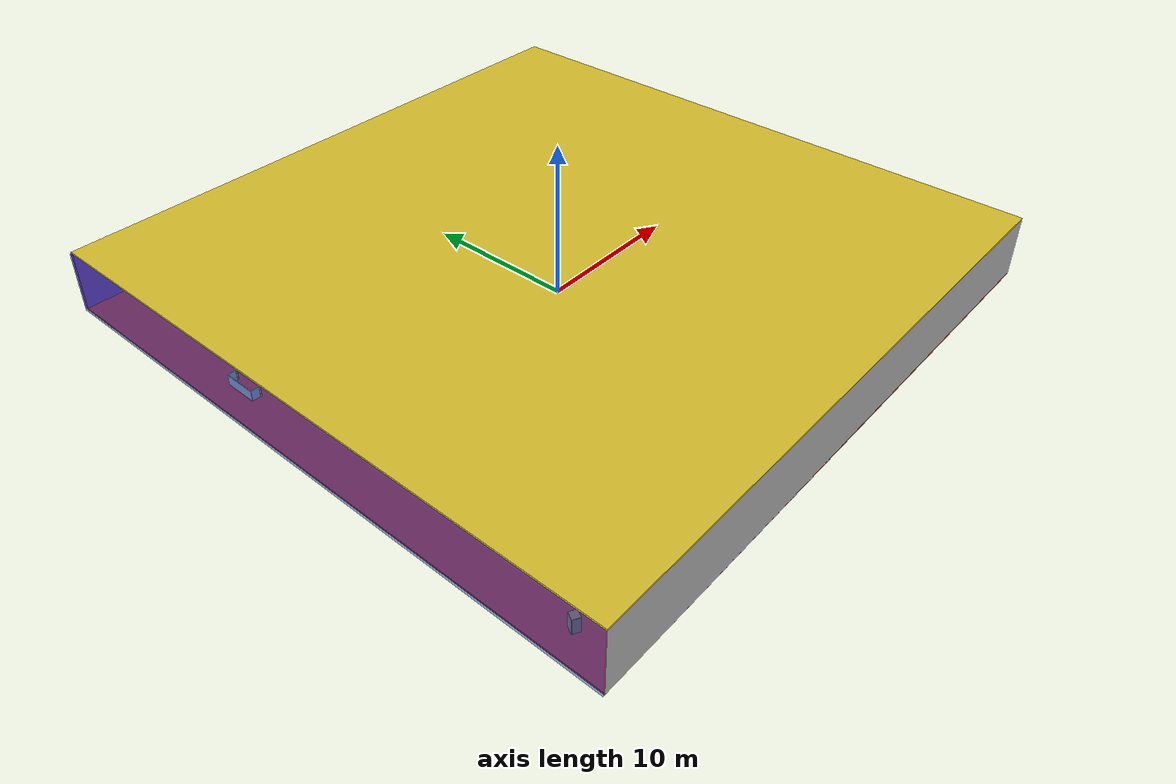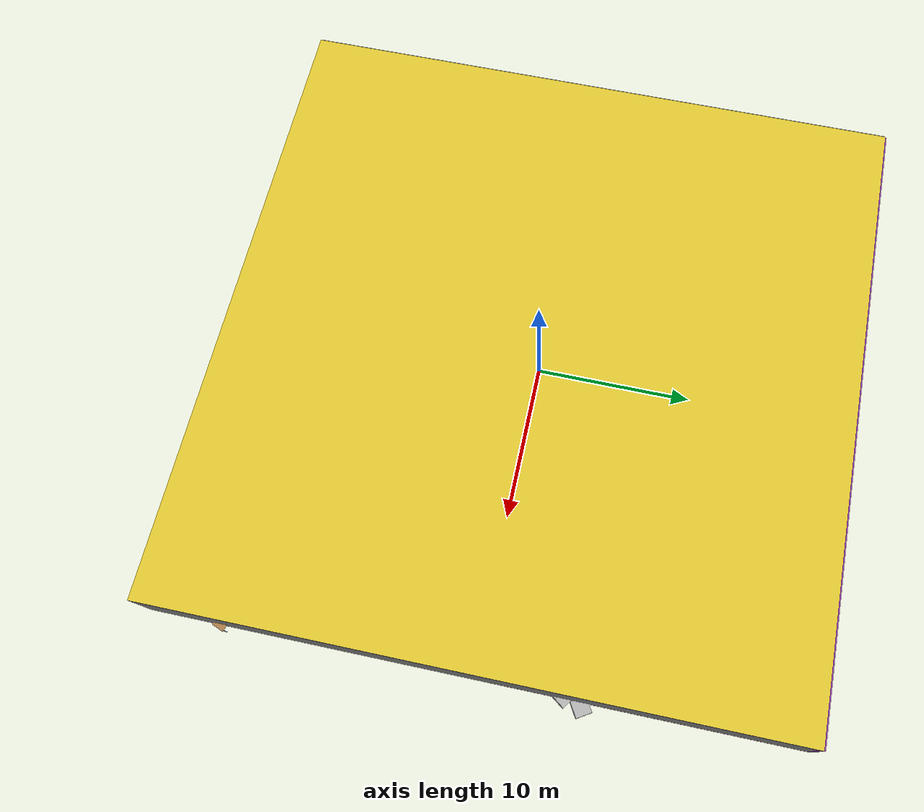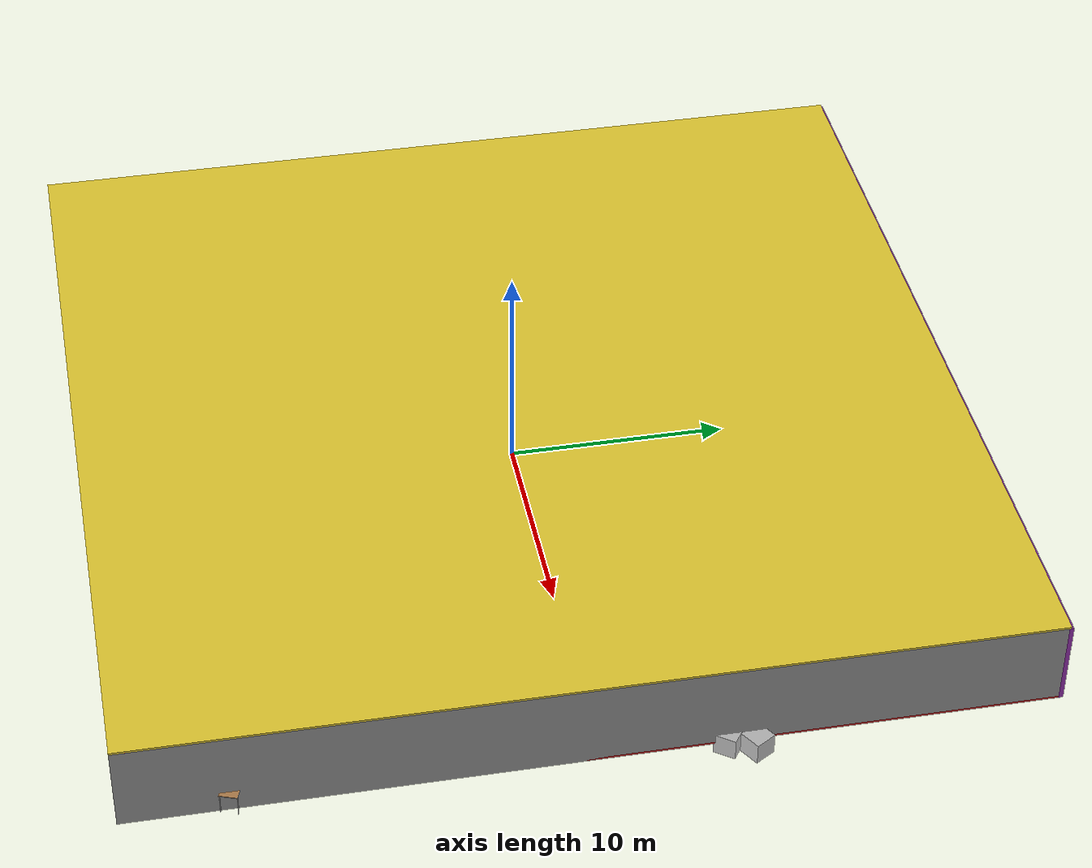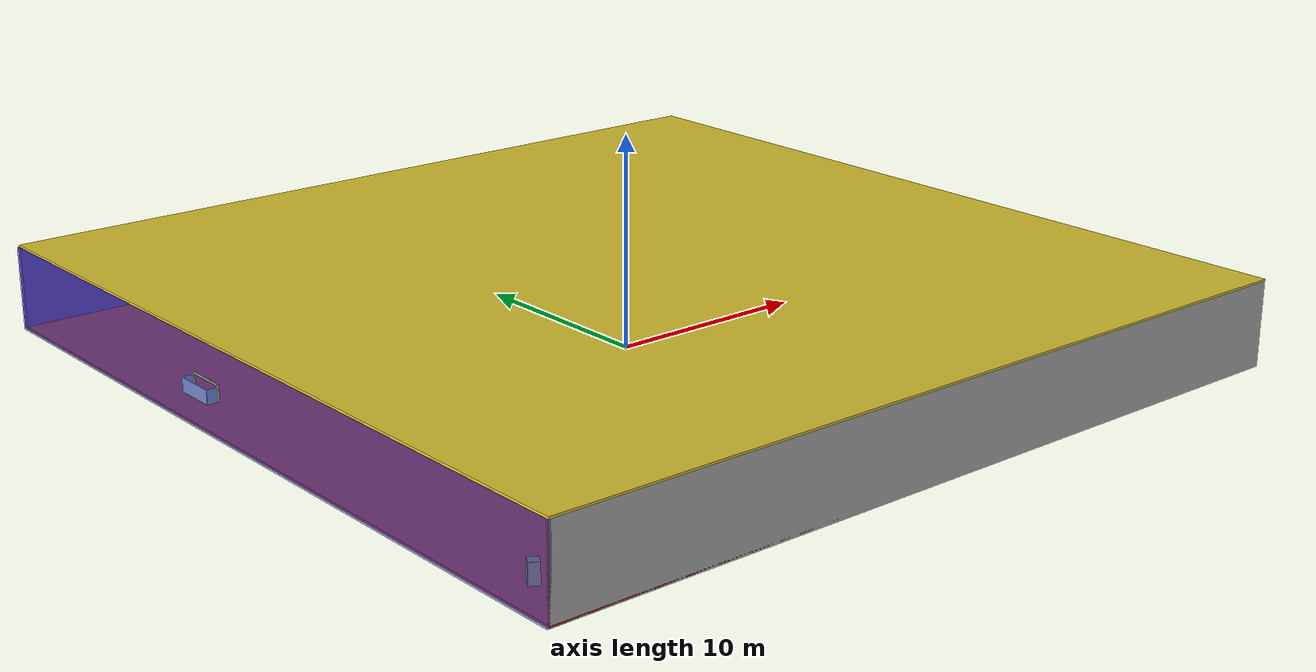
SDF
<sdf version="1.4">
 <world name="default">
  <physics type="ode">
   <max_step_size>0.001</max_step_size>
   <real_time_factor>1</real_time_factor>
   <real_time_update_rate>1000</real_time_update_rate>
   <gravity>0 0 -9.8</gravity>
  </physics>
  <scene><ambient>0.4 0.4 0.4 1</ambient><background>0.7 0.7 0.7 1</background><shadows>1</shadows></scene>
  <model name="Surrounding">
   <static>1</static>
   <link name="Ceiling">
    <collision name="Ceiling_Collision"><geometry><box><size>40 40 0.1</size></box></geometry></collision>
    <visual name="Ceiling_Visual">
     <geometry><box><size>40 40 0.1</size></box></geometry>
     <material>
      <script><uri>file://media/materials/scripts/gazebo.material</uri><name>Gazebo/ZincYellow</name></script>
     </material>
    </visual>
    <pose>0 0 4.05 0 0 0</pose>
   </link>
   <link name="Wall_South">
    <collision name="Wall_South_Collision">
     <geometry><box><size>40 0 4</size></box></geometry>
     <pose>0 0 2 0 -0 0</pose>
    </collision>
    <visual name="Wall_South_Visual">
     <pose>0 0 2 0 -0 0</pose>
     <geometry><box><size>40 0 4</size></box></geometry>
     <material>
      <script><uri>file://media/materials/scripts/gazebo.material</uri><name>Gazebo/CloudySky</name></script>
     </material>
    </visual>
    <velocity_decay><linear>0</linear><angular>0</angular></velocity_decay>
    <pose>0 -20 0 0 -0 0</pose>
   </link>
   <link name="Wall_East">
    <collision name="Wall_21_Collision">
     <geometry><box><size>40 0 4</size></box></geometry>
     <pose>0 0 2 0 -0 0</pose>
    </collision>
    <visual name="Wall_21_Visual">
     <pose>0 0 2 0 -0 0</pose>
     <geometry><box><size>40 0 4</size></box></geometry>
     <material>
      <script><uri>file://media/materials/scripts/gazebo.material</uri><name>Gazebo/GreyGradientSky</name></script>
     </material>
    </visual>
    <velocity_decay><linear>0</linear><angular>0</angular></velocity_decay>
    <pose>20 0 0 0 -0 1.5708</pose>
   </link>
   <link name="Wall_North">
    <collision name="Wall_22_Collision">
     <geometry><box><size>40 0.2 4</size></box></geometry>
     <pose>0 0 2 0 -0 0</pose>
    </collision>
    <visual name="Wall_22_Visual">
     <pose>0 0 2 0 -0 0</pose>
     <geometry><box><size>40 0.2 4</size></box></geometry>
     <material>
      <script><uri>file://media/materials/scripts/gazebo.material</uri><name>Gazebo/Purple</name></script>
     </material>
    </visual>
    <velocity_decay><linear>0</linear><angular>0</angular></velocity_decay>
    <pose>0 20 0 0 -0 0</pose>
   </link>
   <link name="Wall_West">
    <collision name="Wall_23_Collision">
     <geometry><box><size>40 0.2 4</size></box></geometry>
     <pose>0 0 2 0 -0 0</pose>
    </collision>
    <visual name="Wall_23_Visual">
     <pose>0 0 2 0 -0 0</pose>
     <geometry><box><size>40 0.2 4</size></box></geometry>
     <material>
      <script><uri>file://media/materials/scripts/gazebo.material</uri><name>Gazebo/BlueTransparent</name></script>
     </material>
    </visual>
    <velocity_decay><linear>0</linear><angular>0</angular></velocity_decay>
    <pose>-20 0 0 0 0 -1.5708</pose>
   </link>
   <link name="Ground_link">
    <collision name="collision">
     <pose>0 0 .05 0 -0 0</pose>
     <geometry><box><size>40 40 0.1</size></box></geometry>
    </collision>
    <visual name="visual">
     <pose>0 0 .05 0 -0 0</pose>
     <geometry><box><size>40 40 0.1</size></box></geometry>
     <material>
      <script><uri>file://media/materials/scripts/gazebo.material</uri><name>Gazebo/Red</name></script>
     </material>
    </visual>
   </link>
   <static>1</static>
  </model>
  <spherical_coordinates>
   <surface_model>EARTH_WGS84</surface_model>
   <latitude_deg>0</latitude_deg>
   <longitude_deg>0</longitude_deg>
   <elevation>0</elevation>
   <heading_deg>0</heading_deg>
  </spherical_coordinates>
  <light name="lightball_0" type="diffuse">
   <diffuse>0.8 0.8 0.8 1</diffuse>
   <specular>0.2 0.2 0.2 1</specular>
   <attenuation>
    <range>100</range>
    <constant>0.7</constant>
    <linear>0.01</linear>
    <quadratic>0.001</quadratic>
   </attenuation>
   <direction>-0.5 0.1 -0.9</direction>
   <pose>9.78140678765 -5.48198401742 3.31244397632 0 0 0</pose>
  </light>
  <light name="lightball_1" type="diffuse">
   <diffuse>0.8 0.8 0.8 1</diffuse>
   <specular>0.2 0.2 0.2 1</specular>
   <attenuation>
    <range>100</range>
    <constant>0.7</constant>
    <linear>0.01</linear>
    <quadratic>0.001</quadratic>
   </attenuation>
   <direction>-0.5 0.1 -0.9</direction>
   <pose>0.000283256969457 -0.236172714292 2.79142707209 0 0 0</pose>
  </light>
  <light name="lightball_2" type="diffuse">
   <diffuse>0.8 0.8 0.8 1</diffuse>
   <specular>0.2 0.2 0.2 1</specular>
   <attenuation>
    <range>100</range>
    <constant>0.7</constant>
    <linear>0.01</linear>
    <quadratic>0.001</quadratic>
   </attenuation>
   <direction>-0.5 0.1 -0.9</direction>
   <pose>-0.546352244292 3.40164266964 1.42496108457 0 0 0</pose>
  </light>
  <light name="lightball_3" type="diffuse">
   <diffuse>0.8 0.8 0.8 1</diffuse>
   <specular>0.2 0.2 0.2 1</specular>
   <attenuation>
    <range>100</range>
    <constant>0.7</constant>
    <linear>0.01</linear>
    <quadratic>0.001</quadratic>
   </attenuation>
   <direction>-0.5 0.1 -0.9</direction>
   <pose>-6.22101800927 -14.6950618875 1.97176133039 0 0 0</pose>
  </light>
  <light name="lightball_4" type="diffuse">
   <diffuse>0.8 0.8 0.8 1</diffuse>
   <specular>0.2 0.2 0.2 1</specular>
   <attenuation>
    <range>100</range>
    <constant>0.7</constant>
    <linear>0.01</linear>
    <quadratic>0.001</quadratic>
   </attenuation>
   <direction>-0.5 0.1 -0.9</direction>
   <pose>18.3343150966 8.20500039922 3.61678009979 0 0 0</pose>
  </light>
  <light name="lightball_5" type="diffuse">
   <diffuse>0.8 0.8 0.8 1</diffuse>
   <specular>0.2 0.2 0.2 1</specular>
   <attenuation>
    <range>100</range>
    <constant>0.7</constant>
    <linear>0.01</linear>
    <quadratic>0.001</quadratic>
   </attenuation>
   <direction>-0.5 0.1 -0.9</direction>
   <pose>15.6588417957 15.6002234877 1.49638220011 0 0 0</pose>
  </light>
  <light name="lightball_6" type="diffuse">
   <diffuse>0.8 0.8 0.8 1</diffuse>
   <specular>0.2 0.2 0.2 1</specular>
   <attenuation>
    <range>100</range>
    <constant>0.7</constant>
    <linear>0.01</linear>
    <quadratic>0.001</quadratic>
   </attenuation>
   <direction>-0.5 0.1 -0.9</direction>
   <pose>11.5018366153 -19.5043794016 3.30344023388 0 0 0</pose>
  </light>
  <light name="lightball_7" type="diffuse">
   <diffuse>0.8 0.8 0.8 1</diffuse>
   <specular>0.2 0.2 0.2 1</specular>
   <attenuation>
    <range>100</range>
    <constant>0.7</constant>
    <linear>0.01</linear>
    <quadratic>0.001</quadratic>
   </attenuation>
   <direction>-0.5 0.1 -0.9</direction>
   <pose>3.78086635823 8.5310545127 0.631916757503 0 0 0</pose>
  </light>
  <light name="lightball_8" type="diffuse">
   <diffuse>0.8 0.8 0.8 1</diffuse>
   <specular>0.2 0.2 0.2 1</specular>
   <attenuation>
    <range>100</range>
    <constant>0.7</constant>
    <linear>0.01</linear>
    <quadratic>0.001</quadratic>
   </attenuation>
   <direction>-0.5 0.1 -0.9</direction>
   <pose>2.48392445671 7.29592708512 3.42028546955 0 0 0</pose>
  </light>
  <include><uri>model://cabinet</uri><pose>-18.3986745 -17.0211075292 0 0 0 2.62793197672</pose></include>
  <include>
   <uri>model://robocup_3Dsim_goal</uri>
   <pose>-18.0194335964 6.5594492401 0 0 0 3.13843960338</pose>
  </include>
  <include>
   <uri>model://construction_cone</uri>
   <pose>-13.4822692059 16.2463847241 0 0 0 2.89486795398</pose>
  </include>
  <include><uri>model://cabinet</uri><pose>-10.466808294 -13.6220842886 0 0 0 2.7952820368</pose></include>
  <include>
   <uri>model://construction_cone</uri>
   <pose>-12.6709527159 -9.11947230656 0 0 0 0.129754087773</pose>
  </include>
  <include><uri>model://table</uri><pose>-11.7760075425 -6.49592067051 0 0 0 0.00433188134986</pose></include>
  <include>
   <uri>model://textured_shapes</uri>
   <pose>-10.4238919492 6.6618601172 0 0 0 0.466912649605</pose>
  </include>
  <include><uri>model://cabinet</uri><pose>-9.45527784199 1.49868439264 0 0 0 2.87128461444</pose></include>
  <include><uri>model://cabinet</uri><pose>-8.21713259864 15.2845768223 0 0 0 1.10559156925</pose></include>
  <include>
   <uri>model://textured_shapes</uri>
   <pose>-5.25820557226 13.3004535869 0 0 0 2.0833289563</pose>
  </include>
  <include><uri>model://table</uri><pose>-2.14821815896 -9.16268067055 0 0 0 2.23757388094</pose></include>
  <include><uri>model://cabinet</uri><pose>-2.49479715957 -6.06042802915 0 0 0 0.970203320916</pose></include>
  <include><uri>model://cabinet</uri><pose>0.957918156384 4.03749202825 0 0 0 2.8988915145</pose></include>
  <include><uri>model://cabinet</uri><pose>2.98654021882 8.5525082682 0 0 0 0.479214327644</pose></include>
  <include><uri>model://cabinet</uri><pose>5.50755757321 3.17439450482 0 0 0 2.62798927484</pose></include>
  <include>
   <uri>model://construction_cone</uri>
   <pose>9.14039108424 9.85805712095 0 0 0 0.790518869454</pose>
  </include>
  <include>
   <uri>model://robocup_3Dsim_goal</uri>
   <pose>9.9502541489 13.2865947622 0 0 0 2.9973276949</pose>
  </include>
  <include>
   <uri>model://construction_cone</uri>
   <pose>9.83763695393 15.342752986 0 0 0 2.6230435212</pose>
  </include>
  <include><uri>model://table</uri><pose>12.6992475572 -16.9835282648 0 0 0 1.76600957478</pose></include>
  <include><uri>model://cabinet</uri><pose>13.4740825568 16.0631411793 0 0 0 1.26213647426</pose></include>
  <include><uri>model://table</uri><pose>15.8937593678 -12.6410290449 0 0 0 2.44816875097</pose></include>
  <include>
   <uri>model://textured_shapes</uri>
   <pose>15.6367875951 -4.32345403235 0 0 0 1.11288297235</pose>
  </include>
  <include>
   <uri>model://textured_shapes</uri>
   <pose>16.2078278845 -2.39718556941 0 0 0 1.86715791783</pose>
  </include>
  <include><uri>model://table</uri><pose>19.5731701206 -15.192140824 0 0 0 2.7869327445</pose></include>
  <include>
   <uri>model://textured_shapes</uri>
   <pose>18.9641546776 4.33608575368 0 0 0 2.51747803745</pose>
  </include>
  <include>
   <uri>model://textured_shapes</uri>
   <pose>18.9725801806 5.91186162521 0 0 0 2.10997339344</pose>
  </include>
 </world>
</sdf>

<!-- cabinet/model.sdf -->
<sdf version="1.5">
  <model name="cabinet">
    <static>true</static>
    <link name="cabinet_bottom_plate">
      <inertial>
        <pose>0 0 -1 0 0 0</pose>
        <inertia>
          <ixx>2.050000</ixx>
          <ixy>0</ixy>
          <ixz>0</ixz>
          <iyy>2.050000</iyy>
          <iyz>0</iyz>
          <izz>2.050000</izz>
        </inertia>
        <mass>25.000000</mass>
      </inertial>
      <collision name="cabinet_bottom_plate_geom">
        <pose>0 0 0.010000 0 0 0</pose>
        <geometry>
          <box>
            <size>0.450000 0.450000 0.020000</size>
          </box>
        </geometry>
      </collision>
      <visual name="cabinet_bottom_plate_geom_visual">
        <pose>0 0 0.010000 0 0 0</pose>
        <geometry>
          <box>
            <size>0.450000 0.450000 0.020000</size>
          </box>
        </geometry>
        <material>
          <script>
            <uri>model://media/materials/scripts/gazebo.material</uri>
            <name>Gazebo/Wood</name>
          </script>
        </material>
      </visual>
      <collision name="cabinet_bottom_plate_geom_cabinet_back_plate">
        <pose>0.235000 0 0.510000 0 0 0</pose>
        <geometry>
          <box>
            <size>0.020000 0.450000 1.020000</size>
          </box>
        </geometry>
      </collision>
      <visual name="cabinet_bottom_plate_geom_cabinet_back_plate_visual">
        <pose>0.235000 0 0.510000 0 0 0</pose>
        <geometry>
          <box>
            <size>0.020000 0.450000 1.020000</size>
          </box>
        </geometry>
        <material>
          <script>
            <uri>model://media/materials/scripts/gazebo.material</uri>
            <name>Gazebo/Wood</name>
          </script>
        </material>
      </visual>
      <collision name="cabinet_bottom_plate_geom_cabinet_left_plate">
        <pose>0 0.235000 0.510000 0 0 0</pose>
        <geometry>
          <box>
            <size>0.450000 0.020000 1.020000</size>
          </box>
        </geometry>
      </collision>
      <visual name="cabinet_bottom_plate_geom_cabinet_left_plate_visual">
        <pose>0 0.235000 0.510000 0 0 0</pose>
        <geometry>
          <box>
            <size>0.450000 0.020000 1.020000</size>
          </box>
        </geometry>
        <material>
          <script>
            <uri>model://media/materials/scripts/gazebo.material</uri>
            <name>Gazebo/Wood</name>
          </script>
        </material>
      </visual>
      <collision name="cabinet_bottom_plate_geom_cabinet_middle_plate">
        <pose>0 0 0.510000 0 0 0</pose>
        <geometry>
          <box>
            <size>0.450000 0.450000 0.020000</size>
          </box>
        </geometry>
      </collision>
      <visual name="cabinet_bottom_plate_geom_cabinet_middle_plate_visual">
        <pose>0 0 0.510000 0 0 0</pose>
        <geometry>
          <box>
            <size>0.450000 0.450000 0.020000</size>
          </box>
        </geometry>
        <material>
          <script>
            <uri>model://media/materials/scripts/gazebo.material</uri>
            <name>Gazebo/Wood</name>
          </script>
        </material>
      </visual>
      <collision name="cabinet_bottom_plate_geom_cabinet_right_plate">
        <pose>0 -0.235000 0.510000 0 0 0</pose>
        <geometry>
          <box>
            <size>0.450000 0.020000 1.020000</size>
          </box>
        </geometry>
      </collision>
      <visual name="cabinet_bottom_plate_geom_cabinet_right_plate_visual">
        <pose>0 -0.235000 0.510000 0 0 0</pose>
        <geometry>
          <box>
            <size>0.450000 0.020000 1.020000</size>
          </box>
        </geometry>
        <material>
          <script>
            <uri>model://media/materials/scripts/gazebo.material</uri>
            <name>Gazebo/Wood</name>
          </script>
        </material>
      </visual>
      <collision name="cabinet_bottom_plate_geom_cabinet_top_plate">
        <pose>0 0 1.010000 0 0 0</pose>
        <geometry>
          <box>
            <size>0.450000 0.450000 0.020000</size>
          </box>
        </geometry>
      </collision>
      <visual name="cabinet_bottom_plate_geom_cabinet_top_plate_visual">
        <pose>0 0 1.010000 0 0 0</pose>
        <geometry>
          <box>
            <size>0.450000 0.450000 0.020000</size>
          </box>
        </geometry>
        <material>
          <script>
            <uri>model://media/materials/scripts/gazebo.material</uri>
            <name>Gazebo/Wood</name>
          </script>
        </material>
      </visual>
    </link>
  </model>
</sdf>

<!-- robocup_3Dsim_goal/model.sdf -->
<sdf version="1.5">
  <model name="robocup_3d_goal">
    <static>true</static>
    <link name="left_post">
      <pose>0 1.05 0.45 0 0 0</pose>
      <collision name="collision">
        <geometry>
          <cylinder>
            <radius>0.05</radius>
            <length>0.9</length>
          </cylinder>
        </geometry>
      </collision>
      <visual name="visual">
        <geometry>
          <cylinder>
            <radius>0.05</radius>
            <length>0.9</length>
          </cylinder>
        </geometry>
        <material>
          <script>
            <uri>file://media/materials/scripts/gazebo.material</uri>
            <name>Gazebo/ZincYellow</name>
          </script>
        </material>
      </visual>
    </link>
    <link name="left_support_horiz_lower">
      <pose>0.30 1.05 0.01 0 0 0</pose>
      <collision name="collision">
        <geometry>
          <box>
            <size>0.50 0.02 0.02</size>
          </box>
        </geometry>
      </collision>
      <visual name="visual">
        <geometry>
          <box>
            <size>0.50 0.02 0.02</size>
          </box>
        </geometry>
        <material>
          <script>
            <uri>file://media/materials/scripts/gazebo.material</uri>
            <name>Gazebo/White</name>
          </script>
        </material>
      </visual>
    </link>
    <link name="left_support_horiz_upper">
      <pose>0.30 1.05 0.79 0 0 0</pose>
      <collision name="collision">
        <geometry>
          <box>
            <size>0.50 0.02 0.02</size>
          </box>
        </geometry>
      </collision>
      <visual name="visual">
        <geometry>
          <box>
            <size>0.50 0.02 0.02</size>
          </box>
        </geometry>
        <material>
          <script>
            <uri>file://media/materials/scripts/gazebo.material</uri>
            <name>Gazebo/White</name>
          </script>
        </material>
      </visual>
    </link>
    <link name="left_support_vertical">
      <pose>0.56 1.05 0.4 0 1.5708 0</pose>
      <collision name="collision">
        <geometry>
          <box>
            <size>0.80 0.02 0.02</size>
          </box>
        </geometry>
      </collision>
      <visual name="visual">
        <geometry>
          <box>
            <size>0.80 0.02 0.02</size>
          </box>
        </geometry>
        <material>
          <script>
            <uri>file://media/materials/scripts/gazebo.material</uri>
            <name>Gazebo/White</name>
          </script>
        </material>
      </visual>
    </link>
    <link name="right_support_horiz_lower">
      <pose>0.30 -1.05 0.01 0 0 0</pose>
      <collision name="collision">
        <geometry>
          <box>
            <size>0.50 0.02 0.02</size>
          </box>
        </geometry>
      </collision>
      <visual name="visual">
        <geometry>
          <box>
            <size>0.50 0.02 0.02</size>
          </box>
        </geometry>
        <material>
          <script>
            <uri>file://media/materials/scripts/gazebo.material</uri>
            <name>Gazebo/White</name>
          </script>
        </material>
      </visual>
    </link>
    <link name="right_support_horiz_upper">
      <pose>0.30 -1.05 0.79 0 0 0</pose>
      <collision name="collision">
        <geometry>
          <box>
            <size>0.50 0.02 0.02</size>
          </box>
        </geometry>
      </collision>
      <visual name="visual">
        <geometry>
          <box>
            <size>0.50 0.02 0.02</size>
          </box>
        </geometry>
        <material>
          <script>
            <uri>file://media/materials/scripts/gazebo.material</uri>
            <name>Gazebo/White</name>
          </script>
        </material>
      </visual>
    </link>
    <link name="right_support_vertical">
      <pose>0.56 -1.05 0.4 0 1.5708 0</pose>
      <collision name="collision">
        <geometry>
          <box>
            <size>0.80 0.02 0.02</size>
          </box>
        </geometry>
      </collision>
      <visual name="visual">
        <geometry>
          <box>
            <size>0.80 0.02 0.02</size>
          </box>
        </geometry>
        <material>
          <script>
            <uri>file://media/materials/scripts/gazebo.material</uri>
            <name>Gazebo/White</name>
          </script>
        </material>
      </visual>
    </link>
    <link name="center_support_horiz_lower">
      <pose>0.56 0 0.01 0 1.5708 0</pose>
      <collision name="collision">
        <geometry>
          <box>
            <size>0.02 2.08 0.02</size>
          </box>
        </geometry>
      </collision>
      <visual name="visual">
        <geometry>
          <box>
            <size>0.02 2.08 0.02</size>
          </box>
        </geometry>
        <material>
          <script>
            <uri>file://media/materials/scripts/gazebo.material</uri>
            <name>Gazebo/White</name>
          </script>
        </material>
      </visual>
    </link>
    <link name="center_support_horiz_upper">
      <pose>0.56 0 0.79 0 1.5708 0</pose>
      <collision name="collision">
        <geometry>
          <box>
            <size>0.02 2.08 0.02</size>
          </box>
        </geometry>
      </collision>
      <visual name="visual">
        <geometry>
          <box>
            <size>0.02 2.08 0.02</size>
          </box>
        </geometry>
        <material>
          <script>
            <uri>file://media/materials/scripts/gazebo.material</uri>
            <name>Gazebo/White</name>
          </script>
        </material>
      </visual>
    </link>
    <link name="right_post">
      <pose>0 -1.05 0.45 0 0 0</pose>
      <collision name="collision">
        <geometry>
          <cylinder>
            <radius>0.05</radius>
            <length>0.9</length>
          </cylinder>
        </geometry>
      </collision>
      <visual name="visual">
        <geometry>
          <cylinder>
            <radius>0.05</radius>
            <length>0.9</length>
          </cylinder>
        </geometry>
        <material>
          <script>
            <uri>file://media/materials/scripts/gazebo.material</uri>
            <name>Gazebo/ZincYellow</name>
          </script>
        </material>
      </visual>
    </link>
    <link name="crossbar">
      <pose>0 0 0.85 1.57 1.57 0</pose>
      <collision name="collision">
        <geometry>
          <cylinder>
            <radius>0.05</radius>
            <length>2.0</length>
          </cylinder>
        </geometry>
      </collision>
      <visual name="visual">
        <geometry>
          <cylinder>
            <radius>0.05</radius>
            <length>2.0</length>
          </cylinder>
        </geometry>
        <material>
          <script>
            <uri>file://media/materials/scripts/gazebo.material</uri>
            <name>Gazebo/ZincYellow</name>
          </script>
        </material>
      </visual>
    </link>
    <link name="center_net">
      <pose>0.56 0 0.40 0 0 0</pose>
      <collision name="collision">
        <geometry>
          <box>
            <size>0.01 2.1 0.80</size>
          </box>
        </geometry>
      </collision>
      <visual name="visual">
        <geometry>
          <box>
            <size>0.01 2.1 0.80</size>
          </box>
        </geometry>
        <material>
          <script>
            <uri>model://../model_source/models/robocup09_spl_field/materials/scripts/</uri>
            <uri>model://../model_source/models/robocup09_spl_field/materials/textures/</uri>
            <name>RoboCup/Net</name>
          </script>
        </material>
      </visual>
    </link>
    <link name="left_net">
      <pose>0.30 1.05 0.40 0 0 0</pose>
      <collision name="collision">
        <geometry>
          <box>
            <size>0.50 0.01 0.76</size>
          </box>
        </geometry>
      </collision>
      <visual name="visual">
        <geometry>
          <box>
            <size>0.50 0.01 0.76</size>
          </box>
        </geometry>
        <material>
          <script>
            <uri>model://../model_source/models/robocup09_spl_field/materials/scripts/</uri>
            <uri>model://../model_source/models/robocup09_spl_field/materials/textures/</uri>
            <name>RoboCup/Net</name>
          </script>
        </material>
      </visual>
    </link>
    <link name="right_net">
      <pose>0.30 -1.05 0.40 0 0 0</pose>
      <collision name="collision">
        <geometry>
          <box>
            <size>0.50 0.01 0.76</size>
          </box>
        </geometry>
      </collision>
      <visual name="visual">
        <geometry>
          <box>
            <size>0.50 0.01 0.76</size>
          </box>
        </geometry>
        <material>
          <script>
            <uri>model://../model_source/models/robocup09_spl_field/materials/scripts/</uri>
            <uri>model://../model_source/models/robocup09_spl_field/materials/textures/</uri>
            <name>RoboCup/Net</name>
          </script>
        </material>
      </visual>
    </link>
  </model>
</sdf>

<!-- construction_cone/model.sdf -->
<sdf version="1.5">
  <model name="Construction Cone">
    <link name="link">
      <collision name="collision">
        <geometry>
          <mesh>
            <scale>10 10 10</scale>
            <uri>file://isr-testbed/construction_cone/meshes/construction_cone.dae</uri>
          </mesh>
        </geometry>
      </collision>
      <visual name="visual">
        <geometry>
          <mesh>
            <scale>10 10 10</scale>
            <uri>file://isr-testbed/construction_cone/meshes/construction_cone.dae</uri>
          </mesh>
        </geometry>
      </visual>
    </link>
  </model>
</sdf>

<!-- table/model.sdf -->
<sdf version="1.5">
  <model name="table">
    <static>true</static>
    <link name="link">
      <collision name="surface">
        <pose>0 0 1.0 0 0 0</pose>
        <geometry>
          <box>
            <size>1.5 0.8 0.03</size>
          </box>
        </geometry>
        <surface>
          <friction>
            <ode>
              <mu>0.6</mu>
              <mu2>0.6</mu2>
            </ode>
          </friction>
        </surface>
      </collision>
      <visual name="visual1">
        <pose>0 0 1.0 0 0 0</pose>
        <geometry>
          <box>
            <size>1.5 0.8 0.03</size>
          </box>
        </geometry>
        <material>
          <script>
            <uri>model://media/materials/scripts/gazebo.material</uri>
            <name>Gazebo/Wood</name>
          </script>
        </material>
      </visual>
      <collision name="front_left_leg">
        <pose>0.68 0.38 0.5 0 0 0</pose>
        <geometry>
          <cylinder>
            <radius>0.02</radius>
            <length>1.0</length>
          </cylinder>
        </geometry>
      </collision>
      <visual name="front_left_leg">
        <pose>0.68 0.38 0.5 0 0 0</pose>
        <geometry>
          <cylinder>
            <radius>0.02</radius>
            <length>1.0</length>
          </cylinder>
        </geometry>
        <material>
          <script>
            <uri>model://media/materials/scripts/gazebo.material</uri>
            <name>Gazebo/Grey</name>
          </script>
        </material>
      </visual>
      <collision name="front_right_leg">
        <pose>0.68 -0.38 0.5 0 0 0</pose>
        <geometry>
          <cylinder>
            <radius>0.02</radius>
            <length>1.0</length>
          </cylinder>
        </geometry>
      </collision>
      <visual name="front_right_leg">
        <pose>0.68 -0.38 0.5 0 0 0</pose>
        <geometry>
          <cylinder>
            <radius>0.02</radius>
            <length>1.0</length>
          </cylinder>
        </geometry>
        <material>
          <script>
            <uri>model://media/materials/scripts/gazebo.material</uri>
            <name>Gazebo/Grey</name>
          </script>
        </material>
      </visual>
      <collision name="back_right_leg">
        <pose>-0.68 -0.38 0.5 0 0 0</pose>
        <geometry>
          <cylinder>
            <radius>0.02</radius>
            <length>1.0</length>
          </cylinder>
        </geometry>
      </collision>
      <visual name="back_right_leg">
        <pose>-0.68 -0.38 0.5 0 0 0</pose>
        <geometry>
          <cylinder>
            <radius>0.02</radius>
            <length>1.0</length>
          </cylinder>
        </geometry>
        <material>
          <script>
            <uri>model://media/materials/scripts/gazebo.material</uri>
            <name>Gazebo/Grey</name>
          </script>
        </material>
      </visual>
      <collision name="back_left_leg">
        <pose>-0.68 0.38 0.5 0 0 0</pose>
        <geometry>
          <cylinder>
            <radius>0.02</radius>
            <length>1.0</length>
          </cylinder>
        </geometry>
      </collision>
      <visual name="back_left_leg">
        <pose>-0.68 0.38 0.5 0 0 0</pose>
        <geometry>
          <cylinder>
            <radius>0.02</radius>
            <length>1.0</length>
          </cylinder>
        </geometry>
        <material>
          <script>
            <uri>model://media/materials/scripts/gazebo.material</uri>
            <name>Gazebo/Grey</name>
          </script>
        </material>
      </visual>
    </link>
  </model>
</sdf>

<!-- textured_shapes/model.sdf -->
<sdf version="1.6">
  <model name="textured_shapes">
    <pose>0 0 0.5 0 0 0</pose>
    <link name="box">
      <pose>0 -1.5 0 0 0 0</pose>
      <collision name="collision">
        <geometry>
          <box>
            <size>1 1 1</size>
          </box>
        </geometry>
      </collision>
      <visual name="visual">
        <geometry>
          <box>
            <size>1 1 1</size>
          </box>
        </geometry>
        <material>
          <script>
            <uri>model://../model_source/models/textured_shapes/materials/scripts</uri>
            <uri>model://../model_source/models/textured_shapes/materials/textures</uri>
            <name>TexturedShape/Squares</name>
          </script>
        </material>
      </visual>
    </link>
    <link name="sphere">
      <collision name="collision">
        <geometry>
          <sphere>
            <radius>0.5</radius>
          </sphere>
        </geometry>
      </collision>
      <visual name="visual">
        <geometry>
          <sphere>
            <radius>0.5</radius>
          </sphere>
        </geometry>
        <material>
          <script>
            <uri>model://../model_source/models/textured_shapes/materials/scripts</uri>
            <uri>model://../model_source/models/textured_shapes/materials/textures</uri>
            <name>TexturedShape/Squares</name>
          </script>
        </material>
      </visual>
    </link>
    <link name="cylinder">
      <pose>0 1.5 0 0 0 0</pose>
      <collision name="collision">
        <geometry>
          <cylinder>
            <radius>0.5</radius>
            <length>1</length>
          </cylinder>
        </geometry>
      </collision>
      <visual name="visual">
        <geometry>
          <cylinder>
            <radius>0.5</radius>
            <length>1</length>
          </cylinder>
        </geometry>
        <material>
          <script>
            <uri>model://../model_source/models/textured_shapes/materials/scripts</uri>
            <uri>model://../model_source/models/textured_shapes/materials/textures</uri>
            <name>TexturedShape/Squares</name>
          </script>
        </material>
      </visual>
    </link>
  </model>
</sdf>
